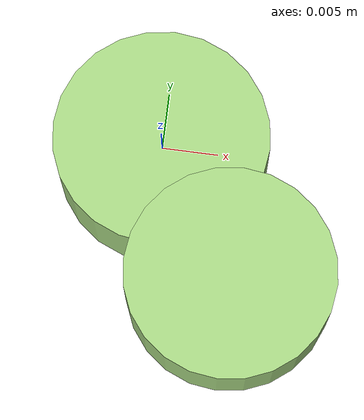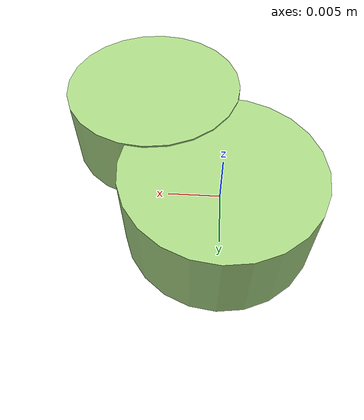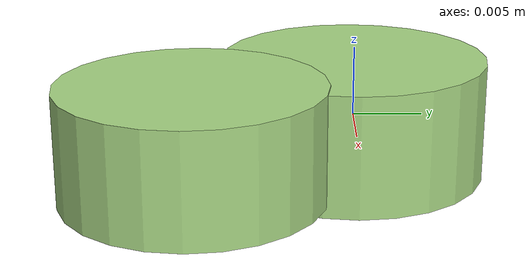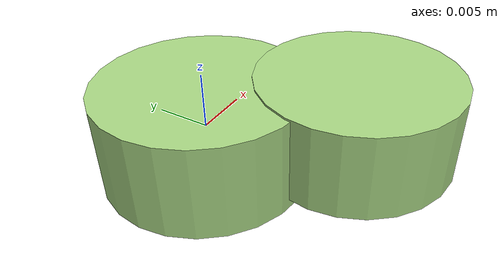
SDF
<?xml version="1.0" ?>
<!-- |    This document was autogenerated by xmacro from data/veggie_template/veggie_base.sdf.xacro  | -->
<!-- |    EDITING THIS FILE BY HAND IS NOT RECOMMENDED                                               | -->
<sdf version="1.8">
	<!-- Parameters -->
	<!-- Base -->
	<!-- Joint 0 -->
	<!-- Link 1 -->
	<!-- Joint 1 -->
	<!-- Link 2 -->
	<!-- Primitives -->
	<!-- All dimensions are half -->
	<!-- Object -->
	<model name="veggie">
		<!-- link0 -->
		<link name="link0">
			<inertial>
				<mass>0.002426946374119754</mass>
				<inertia>
					<ixx>6.950252543046868e-08</ixx>
					<ixy>0</ixy>
					<ixz>0</ixz>
					<iyy>6.950252543046868e-08</iyy>
					<iyz>0</iyz>
					<izz>1.0919202714145567e-07</izz>
				</inertia>
			</inertial>
			<visual name="link0_visual">
				<pose>0 0 0 0 0 0</pose>
				<geometry>
					<cylinder>
						<radius>0.009485939971885201</radius>
						<length>0.008585163052914237</length>
					</cylinder>
				</geometry>
				<material>
					<ambient>0.659 0.839 0.514 1</ambient>
					<diffuse>0.659 0.839 0.514 1</diffuse>
					<specular>0 0 0 0</specular>
					<emissive>0 0 0 1</emissive>
				</material>
			</visual>
			<collision name="link0_collision">
				<pose>0 0 0 0 0 0 </pose>
				<geometry>
					<cylinder>
						<radius>0.009485939971885201</radius>
						<length>0.008585163052914237</length>
					</cylinder>
				</geometry>
			</collision>
		</link>
		<!-- link1 -->
		<joint name="joint0" type="fixed">
			<pose relative_to="link0">0.007405318402084268 -0.011154752112734721 0.0005216251813023273 0.0 0.0 0.0</pose>
			<parent>link0</parent>
			<child>link1</child>
		</joint>
		<link name="link1">
			<pose relative_to="joint0">0 0 0 0 0 0</pose>
			<inertial>
				<mass>0.0020969806391424512</mass>
				<inertia>
					<ixx>5.5258435739179707e-08</ixx>
					<ixy>0</ixy>
					<ixz>0</ixz>
					<iyy>5.5258435739179707e-08</iyy>
					<iyz>0</iyz>
					<izz>8.881604977008495e-08</izz>
				</inertia>
			</inertial>
			<visual name="link1_visual">
				<pose>0 0 0 0 0 0</pose>
				<geometry>
					<cylinder>
						<radius>0.00920372246355916</radius>
						<length>0.00787982376114936</length>
					</cylinder>
				</geometry>
				<material>
					<ambient>0.659 0.839 0.514 1</ambient>
					<diffuse>0.659 0.839 0.514 1</diffuse>
					<specular>0 0 0 0</specular>
					<emissive>0 0 0 1</emissive>
				</material>
			</visual>
			<collision name="link1_collision">
				<pose>0 0 0 0 0 0 </pose>
				<geometry>
					<cylinder>
						<radius>0.00920372246355916</radius>
						<length>0.00787982376114936</length>
					</cylinder>
				</geometry>
			</collision>
		</link>
		<!-- link2 -->
	</model>
</sdf>
